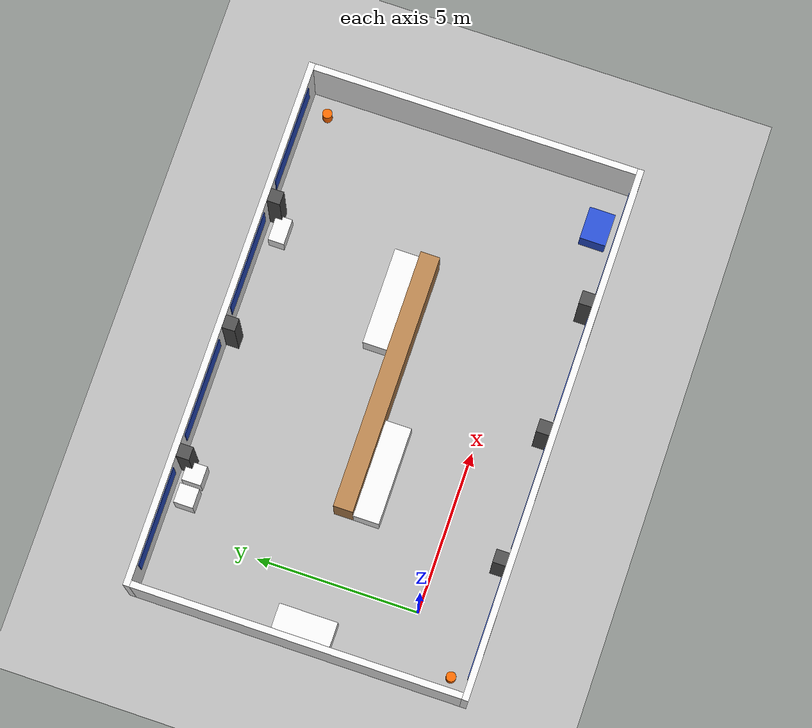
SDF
<?xml version="1.0"?>
<sdf version="1.6">
  <world name="default">
    <light name="sun" type="directional">
      <cast_shadows>true</cast_shadows><pose>0 0 10 0 0 0</pose>
      <diffuse>0.8 0.8 0.8 1</diffuse><specular>0.2 0.2 0.2 1</specular>
      <direction>-0.5 0.1 -0.9</direction>
    </light>
    <model name="ground_plane">
      <static>true</static>
      <link name="link">
        <collision name="collision">
          <geometry><plane><normal>0 0 1</normal><size>100 100</size></plane></geometry>
          <surface><friction><ode><mu>100</mu><mu2>50</mu2></ode></friction></surface>
        </collision>
        <visual name="visual">
          <geometry><plane><normal>0 0 1</normal><size>100 100</size></plane></geometry>
          <material><ambient>0.7 0.7 0.7 1</ambient><diffuse>0.7 0.7 0.7 1</diffuse></material>
        </visual>
      </link>
    </model>
    <physics name="default_physics" default="0" type="ode">
      <max_step_size>0.001</max_step_size>
      <real_time_factor>1</real_time_factor>
      <real_time_update_rate>1000</real_time_update_rate>
    </physics>
    <scene>
      <shadows>false</shadows>
    </scene>

    <model name="hall">
      <static>true</static>
      <link name="link">
        <collision name="wall_south_collision">
          <pose>6.000 -2.100 1.250 0 0 0</pose>
          <geometry><box><size>16.400 0.200 2.500</size></box></geometry>
        </collision>
        <visual name="wall_south_visual">
          <pose>6.000 -2.100 1.250 0 0 0</pose>
          <geometry><box><size>16.400 0.200 2.500</size></box></geometry>
          <material><script><uri>file://media/materials/scripts/gazebo.material</uri><name>Gazebo/White</name></script></material>
        </visual>
        <collision name="wall_north_collision">
          <pose>6.000 8.100 1.250 0 0 0</pose>
          <geometry><box><size>16.400 0.200 2.500</size></box></geometry>
        </collision>
        <visual name="wall_north_visual">
          <pose>6.000 8.100 1.250 0 0 0</pose>
          <geometry><box><size>16.400 0.200 2.500</size></box></geometry>
          <material><script><uri>file://media/materials/scripts/gazebo.material</uri><name>Gazebo/White</name></script></material>
        </visual>
        <collision name="wall_west_collision">
          <pose>-2.100 3.000 1.250 0 0 0</pose>
          <geometry><box><size>0.200 10.000 2.500</size></box></geometry>
        </collision>
        <visual name="wall_west_visual">
          <pose>-2.100 3.000 1.250 0 0 0</pose>
          <geometry><box><size>0.200 10.000 2.500</size></box></geometry>
          <material><script><uri>file://media/materials/scripts/gazebo.material</uri><name>Gazebo/White</name></script></material>
        </visual>
        <collision name="wall_east_collision">
          <pose>14.100 3.000 1.250 0 0 0</pose>
          <geometry><box><size>0.200 10.000 2.500</size></box></geometry>
        </collision>
        <visual name="wall_east_visual">
          <pose>14.100 3.000 1.250 0 0 0</pose>
          <geometry><box><size>0.200 10.000 2.500</size></box></geometry>
          <material><script><uri>file://media/materials/scripts/gazebo.material</uri><name>Gazebo/White</name></script></material>
        </visual>
        <visual name="window_s0_visual">
          <pose>0.000 -1.990 1.700 0 0 0</pose>
          <geometry><box><size>3.000 0.020 1.000</size></box></geometry>
          <material><script><uri>file://media/materials/scripts/gazebo.material</uri><name>Gazebo/BlueGlow</name></script></material>
        </visual>
        <visual name="window_n0_visual">
          <pose>0.000 7.990 1.700 0 0 0</pose>
          <geometry><box><size>3.000 0.020 1.000</size></box></geometry>
          <material><script><uri>file://media/materials/scripts/gazebo.material</uri><name>Gazebo/BlueGlow</name></script></material>
        </visual>
        <visual name="window_s1_visual">
          <pose>4.000 -1.990 1.700 0 0 0</pose>
          <geometry><box><size>3.000 0.020 1.000</size></box></geometry>
          <material><script><uri>file://media/materials/scripts/gazebo.material</uri><name>Gazebo/BlueGlow</name></script></material>
        </visual>
        <visual name="window_n1_visual">
          <pose>4.000 7.990 1.700 0 0 0</pose>
          <geometry><box><size>3.000 0.020 1.000</size></box></geometry>
          <material><script><uri>file://media/materials/scripts/gazebo.material</uri><name>Gazebo/BlueGlow</name></script></material>
        </visual>
        <visual name="window_s2_visual">
          <pose>8.000 -1.990 1.700 0 0 0</pose>
          <geometry><box><size>3.000 0.020 1.000</size></box></geometry>
          <material><script><uri>file://media/materials/scripts/gazebo.material</uri><name>Gazebo/BlueGlow</name></script></material>
        </visual>
        <visual name="window_n2_visual">
          <pose>8.000 7.990 1.700 0 0 0</pose>
          <geometry><box><size>3.000 0.020 1.000</size></box></geometry>
          <material><script><uri>file://media/materials/scripts/gazebo.material</uri><name>Gazebo/BlueGlow</name></script></material>
        </visual>
        <visual name="window_s3_visual">
          <pose>12.000 -1.990 1.700 0 0 0</pose>
          <geometry><box><size>3.000 0.020 1.000</size></box></geometry>
          <material><script><uri>file://media/materials/scripts/gazebo.material</uri><name>Gazebo/BlueGlow</name></script></material>
        </visual>
        <visual name="window_n3_visual">
          <pose>12.000 7.990 1.700 0 0 0</pose>
          <geometry><box><size>3.000 0.020 1.000</size></box></geometry>
          <material><script><uri>file://media/materials/scripts/gazebo.material</uri><name>Gazebo/BlueGlow</name></script></material>
        </visual>
        <collision name="column_s0_collision">
          <pose>2.000 -1.800 1.250 0 0 0</pose>
          <geometry><box><size>0.400 0.400 2.500</size></box></geometry>
        </collision>
        <visual name="column_s0_visual">
          <pose>2.000 -1.800 1.250 0 0 0</pose>
          <geometry><box><size>0.400 0.400 2.500</size></box></geometry>
          <material><script><uri>file://media/materials/scripts/gazebo.material</uri><name>Gazebo/DarkGrey</name></script></material>
        </visual>
        <collision name="column_n0_collision">
          <pose>2.000 7.800 1.250 0 0 0</pose>
          <geometry><box><size>0.400 0.400 2.500</size></box></geometry>
        </collision>
        <visual name="column_n0_visual">
          <pose>2.000 7.800 1.250 0 0 0</pose>
          <geometry><box><size>0.400 0.400 2.500</size></box></geometry>
          <material><script><uri>file://media/materials/scripts/gazebo.material</uri><name>Gazebo/DarkGrey</name></script></material>
        </visual>
        <collision name="column_s1_collision">
          <pose>6.000 -1.800 1.250 0 0 0</pose>
          <geometry><box><size>0.400 0.400 2.500</size></box></geometry>
        </collision>
        <visual name="column_s1_visual">
          <pose>6.000 -1.800 1.250 0 0 0</pose>
          <geometry><box><size>0.400 0.400 2.500</size></box></geometry>
          <material><script><uri>file://media/materials/scripts/gazebo.material</uri><name>Gazebo/DarkGrey</name></script></material>
        </visual>
        <collision name="column_n1_collision">
          <pose>6.000 7.800 1.250 0 0 0</pose>
          <geometry><box><size>0.400 0.400 2.500</size></box></geometry>
        </collision>
        <visual name="column_n1_visual">
          <pose>6.000 7.800 1.250 0 0 0</pose>
          <geometry><box><size>0.400 0.400 2.500</size></box></geometry>
          <material><script><uri>file://media/materials/scripts/gazebo.material</uri><name>Gazebo/DarkGrey</name></script></material>
        </visual>
        <collision name="column_s2_collision">
          <pose>10.000 -1.800 1.250 0 0 0</pose>
          <geometry><box><size>0.400 0.400 2.500</size></box></geometry>
        </collision>
        <visual name="column_s2_visual">
          <pose>10.000 -1.800 1.250 0 0 0</pose>
          <geometry><box><size>0.400 0.400 2.500</size></box></geometry>
          <material><script><uri>file://media/materials/scripts/gazebo.material</uri><name>Gazebo/DarkGrey</name></script></material>
        </visual>
        <collision name="column_n2_collision">
          <pose>10.000 7.800 1.250 0 0 0</pose>
          <geometry><box><size>0.400 0.400 2.500</size></box></geometry>
        </collision>
        <visual name="column_n2_visual">
          <pose>10.000 7.800 1.250 0 0 0</pose>
          <geometry><box><size>0.400 0.400 2.500</size></box></geometry>
          <material><script><uri>file://media/materials/scripts/gazebo.material</uri><name>Gazebo/DarkGrey</name></script></material>
        </visual>
        <collision name="island_shelf_collision">
          <pose>6.000 3.000 0.800 0 0 0</pose>
          <geometry><box><size>8.000 0.600 1.600</size></box></geometry>
        </collision>
        <visual name="island_shelf_visual">
          <pose>6.000 3.000 0.800 0 0 0</pose>
          <geometry><box><size>8.000 0.600 1.600</size></box></geometry>
          <material><script><uri>file://media/materials/scripts/gazebo.material</uri><name>Gazebo/Wood</name></script></material>
        </visual>
        <collision name="island_bench_a_collision">
          <pose>3.500 2.300 0.450 0 0 0</pose>
          <geometry><box><size>3.000 0.800 0.900</size></box></geometry>
        </collision>
        <visual name="island_bench_a_visual">
          <pose>3.500 2.300 0.450 0 0 0</pose>
          <geometry><box><size>3.000 0.800 0.900</size></box></geometry>
          <material><script><uri>file://media/materials/scripts/gazebo.material</uri><name>Gazebo/White</name></script></material>
        </visual>
        <collision name="island_bench_b_collision">
          <pose>8.500 3.700 0.450 0 0 0</pose>
          <geometry><box><size>3.000 0.800 0.900</size></box></geometry>
        </collision>
        <visual name="island_bench_b_visual">
          <pose>8.500 3.700 0.450 0 0 0</pose>
          <geometry><box><size>3.000 0.800 0.900</size></box></geometry>
          <material><script><uri>file://media/materials/scripts/gazebo.material</uri><name>Gazebo/White</name></script></material>
        </visual>
        <collision name="bench_west_collision">
          <pose>-1.500 3.000 0.450 0 0 0</pose>
          <geometry><box><size>0.800 1.800 0.900</size></box></geometry>
        </collision>
        <visual name="bench_west_visual">
          <pose>-1.500 3.000 0.450 0 0 0</pose>
          <geometry><box><size>0.800 1.800 0.900</size></box></geometry>
          <material><script><uri>file://media/materials/scripts/gazebo.material</uri><name>Gazebo/White</name></script></material>
        </visual>
        <collision name="cabinet_n0_collision">
          <pose>1.000 7.500 0.500 0 0 0</pose>
          <geometry><box><size>0.600 0.600 1.000</size></box></geometry>
        </collision>
        <visual name="cabinet_n0_visual">
          <pose>1.000 7.500 0.500 0 0 0</pose>
          <geometry><box><size>0.600 0.600 1.000</size></box></geometry>
          <material><script><uri>file://media/materials/scripts/gazebo.material</uri><name>Gazebo/White</name></script></material>
        </visual>
        <collision name="cabinet_n1_collision">
          <pose>1.700 7.500 0.500 0 0 0</pose>
          <geometry><box><size>0.600 0.600 1.000</size></box></geometry>
        </collision>
        <visual name="cabinet_n1_visual">
          <pose>1.700 7.500 0.500 0 0 0</pose>
          <geometry><box><size>0.600 0.600 1.000</size></box></geometry>
          <material><script><uri>file://media/materials/scripts/gazebo.material</uri><name>Gazebo/White</name></script></material>
        </visual>
        <collision name="charger_box_collision">
          <pose>9.500 7.550 0.350 0 0 0</pose>
          <geometry><box><size>0.800 0.500 0.700</size></box></geometry>
        </collision>
        <visual name="charger_box_visual">
          <pose>9.500 7.550 0.350 0 0 0</pose>
          <geometry><box><size>0.800 0.500 0.700</size></box></geometry>
          <material><script><uri>file://media/materials/scripts/gazebo.material</uri><name>Gazebo/White</name></script></material>
        </visual>
        <collision name="crate_se_collision">
          <pose>12.600 -1.400 0.400 0 0 0</pose>
          <geometry><box><size>1.000 0.800 0.800</size></box></geometry>
        </collision>
        <visual name="crate_se_visual">
          <pose>12.600 -1.400 0.400 0 0 0</pose>
          <geometry><box><size>1.000 0.800 0.800</size></box></geometry>
          <material><script><uri>file://media/materials/scripts/gazebo.material</uri><name>Gazebo/Blue</name></script></material>
        </visual>
      </link>
    </model>

    <model name="cone_0">
      <static>true</static><pose>13.4 7.4 0.25 0 0 0</pose>
      <link name="link">
        <collision name="collision"><geometry><cylinder><radius>0.15</radius><length>0.5</length></cylinder></geometry></collision>
        <visual name="visual">
          <geometry><cylinder><radius>0.15</radius><length>0.5</length></cylinder></geometry>
          <material><ambient>1 0.4 0 1</ambient><diffuse>1 0.4 0 1</diffuse></material>
        </visual>
      </link>
    </model>
    <model name="cone_1">
      <static>true</static><pose>-1.5 -1.5 0.25 0 0 0</pose>
      <link name="link">
        <collision name="collision"><geometry><cylinder><radius>0.15</radius><length>0.5</length></cylinder></geometry></collision>
        <visual name="visual">
          <geometry><cylinder><radius>0.15</radius><length>0.5</length></cylinder></geometry>
          <material><ambient>1 0.4 0 1</ambient><diffuse>1 0.4 0 1</diffuse></material>
        </visual>
      </link>
    </model>
  </world>
</sdf>
